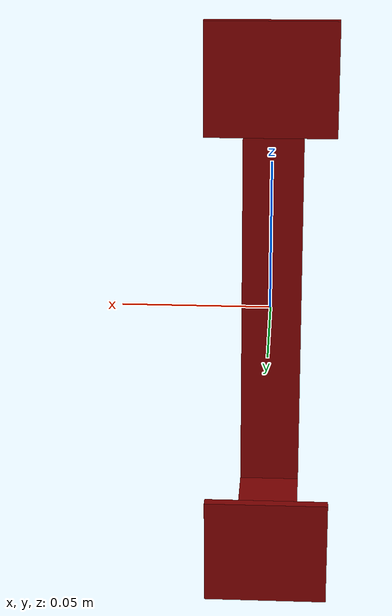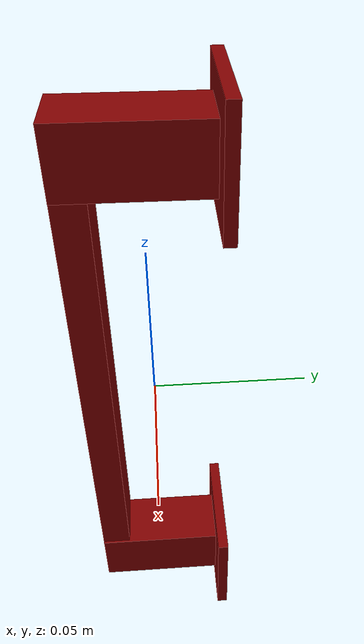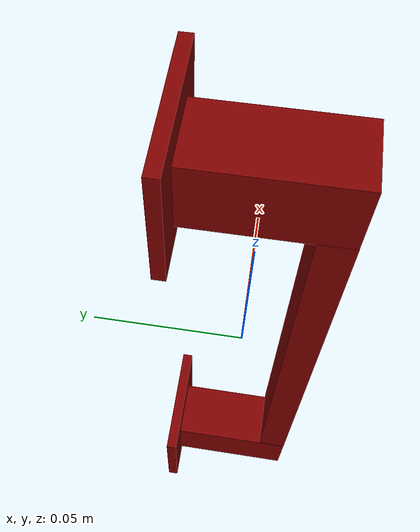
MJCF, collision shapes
<?xml version='1.0' encoding='UTF-8'?>
<mujoco model="model">
  <option timestep="0.002" gravity="0.0 0.0 -9.81"/>
  <compiler angle="radian"/>
  <asset>
    <mesh file="visuals/CabinetHandle018.obj" name="CabinetHandle018_vis"/>
    <texture file="visuals/T_BC001.png" name="tex" type="2d"/>
    <material name="mat" rgba="1 1 1 1.0" texture="tex" shininess="0.5" specular="0.3103448502657381"/>
  </asset>
  <default>
    <default class="visual">
      <geom conaffinity="0" contype="0" group="1" type="mesh"/>
    </default>
    <default class="collision">
      <geom group="0" rgba="0.5 0 0 0.5" density="1.0" solref="0.004 1" solimp="0.998 0.998 0.001"/>
    </default>
    <default class="spawn">
      <geom group="0" rgba="1 1 1 0.5" contype="0" conaffinity="0"/>
      <site group="0" rgba="1 1 1 0.5"/>
    </default>
    <default class="region">
      <geom group="1" conaffinity="0" contype="0" rgba="0 1 0 0" mass="0"/>
    </default>
  </default>
  <worldbody>
    <body>
      <body name="object">
        <geom mesh="CabinetHandle018_vis" type="mesh" solimp="0.998 0.998 0.001" solref="0.001 1" friction="0.95 0.3 0.1" class="visual" material="mat"/>
        <geom type="box" pos="0.0002719331532716751 0.021589169278740883 0.08056622743606567" size="0.020876025781035423 0.0018269863212481141 0.01799679361283779" quat="1.0 0.0 0.0 0.0" class="collision"/>
        <geom type="box" pos="0.0002719331532716751 0.021589165553450584 -0.08054506033658981" size="0.020876025781035423 0.001826981664635241 0.0180179663002491" quat="1.0 0.0 0.0 0.0" class="collision"/>
        <geom type="box" pos="9.384006261825562e-06 -0.00186973309610039 0.0805707648396492" size="0.010320320725440979 0.021546417847275734 0.010098435916006565" quat="1.0 0.0 0.0 0.0" class="collision"/>
        <geom type="box" pos="-9.781436529010534e-05 -0.0018697329796850681 -0.08004496246576309" size="0.010339549742639065 0.021546419709920883 0.009831873700022697" quat="1.0 0.0 0.0 0.0" class="collision"/>
        <geom type="box" pos="-0.00021015317179262638 -0.018471485003829002 0.0008166320621967316" size="0.010338816791772842 0.00494467094540596 0.07013573497533798" quat="1.0 0.0 0.0 0.0" class="collision"/>
        <geom class="region" name="reg_main" type="box" pos="0.0 0.0 0.0" size="0.02236613428592682 0.024416155949234963 0.09956302291154862"/>
      </body>
    </body>
  </worldbody>
  <actuator/>
</mujoco>
